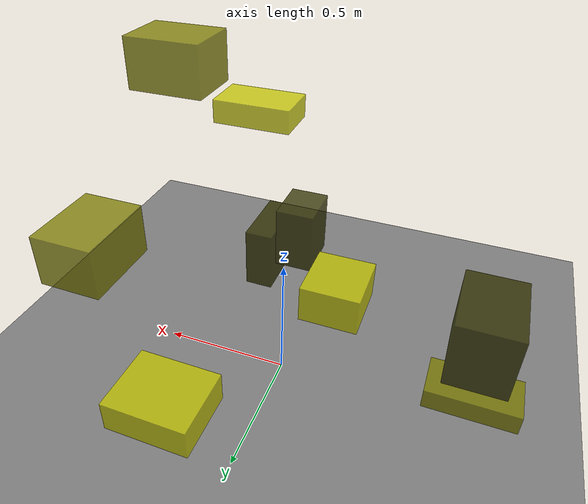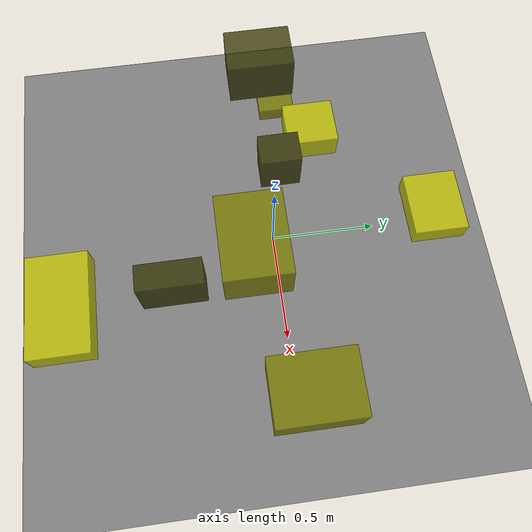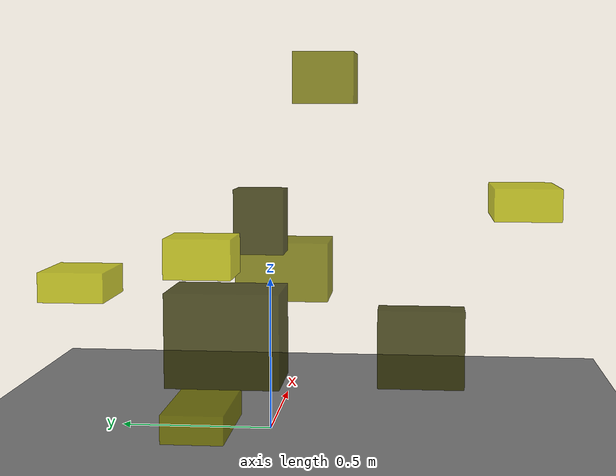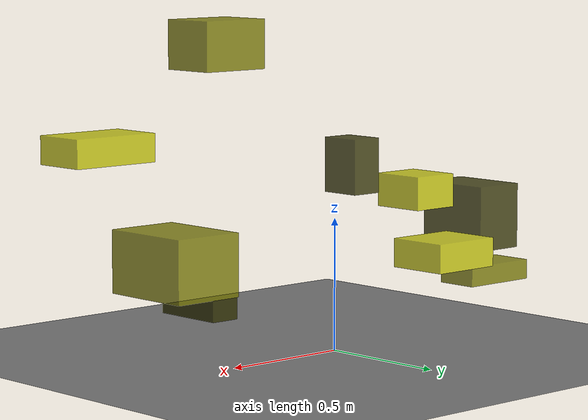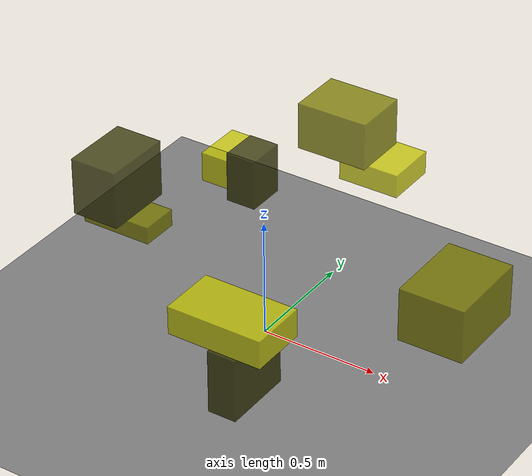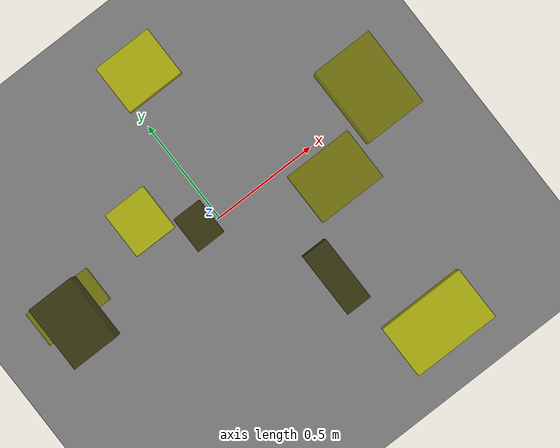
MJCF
<?xml version="1.0"?>
<mujoco model="obstacle_scene">
  <compiler angle="radian" coordinate="local"/>
  <option timestep="0.001" gravity="0 0 -9.81"/>

  <asset>
    <material name="obstacle_mat" rgba="0.8 0.8 0.0 0.8"/>
    <material name="ground_mat" rgba="0.5 0.5 0.5 1"/>
  </asset>

  <worldbody>
    <!-- Ground plane -->
    <geom name="ground" type="plane" size="3 3 0.1" material="ground_mat"/>

    <!-- Obstacles -->
    <body name="obstacle_0" pos="0.241230 -0.493459 0.231515">
      <geom name="obs_0" type="box" size="0.059953 0.149051 0.135341" rgba="0.2 0.2 0.0 0.8"/>
    </body>
    <body name="obstacle_1" pos="-0.722984 0.094212 0.235510">
      <geom name="obs_1" type="box" size="0.156882 0.082756 0.037731" rgba="0.5 0.5 0.0 0.8"/>
    </body>
    <body name="obstacle_2" pos="0.442010 -0.854165 0.725599">
      <geom name="obs_2" type="box" size="0.189429 0.114898 0.056314" rgba="0.8 0.8 0.0 0.8"/>
    </body>
    <body name="obstacle_3" pos="-0.715903 0.025325 0.454722">
      <geom name="obs_3" type="box" size="0.104194 0.150891 0.125083" rgba="0.2 0.2 0.0 0.8"/>
    </body>
    <body name="obstacle_4" pos="0.453938 -0.144883 1.162754">
      <geom name="obs_4" type="box" size="0.137412 0.106749 0.090142" rgba="0.5 0.5 0.0 0.8"/>
    </body>
    <body name="obstacle_5" pos="0.119111 0.670572 0.461022">
      <geom name="obs_5" type="box" size="0.132583 0.111531 0.050373" rgba="0.8 0.8 0.0 0.8"/>
    </body>
    <body name="obstacle_6" pos="-0.066997 0.022408 0.698313">
      <geom name="obs_6" type="box" size="0.061640 0.079662 0.102645" rgba="0.2 0.2 0.0 0.8"/>
    </body>
    <body name="obstacle_7" pos="0.814578 0.044834 0.423947">
      <geom name="obs_7" type="box" size="0.136076 0.179928 0.113049" rgba="0.5 0.5 0.0 0.8"/>
    </body>
    <body name="obstacle_8" pos="-0.244883 0.180725 0.604201">
      <geom name="obs_8" type="box" size="0.093927 0.103489 0.061753" rgba="0.8 0.8 0.0 0.8"/>
    </body>
  </worldbody>
</mujoco>
